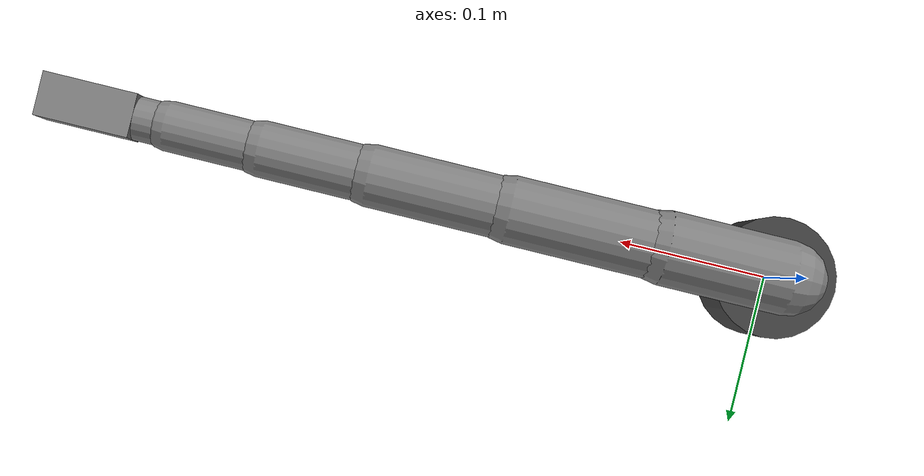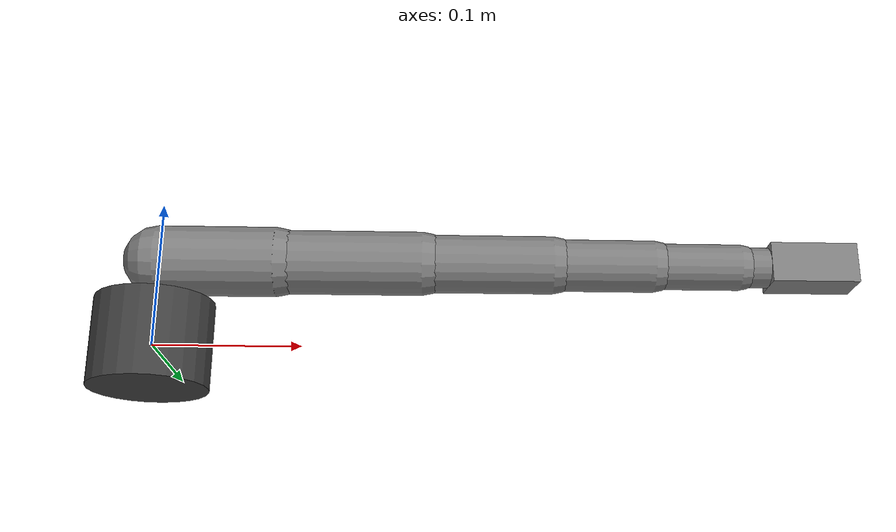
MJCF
<mujoco model="generic_7dof_arm">
  <compiler angle="degree" coordinate="local"/>
  <option timestep="0.002" gravity="0 0 -9.81"/>

  <worldbody>
    <body name="arm_base" pos="0 0 0">
      <geom type="cylinder" size="0.04 0.03" mass="0.2" rgba="0.25 0.25 0.25 1"/>
      <body name="link_1" pos="0 0 0.06">
        <joint name="joint_1" type="hinge" axis="0 0 1" range="-180 180"/>
        <geom type="capsule" fromto="0 0 0 0.08 0 0" size="0.024" mass="0.18"/>
        <body name="link_2" pos="0.08 0 0">
          <joint name="joint_2" type="hinge" axis="0 1 0" range="-120 120"/>
          <geom type="capsule" fromto="0 0 0 0.10 0 0" size="0.022" mass="0.18"/>
          <body name="link_3" pos="0.10 0 0">
            <joint name="joint_3" type="hinge" axis="0 1 0" range="-120 120"/>
            <geom type="capsule" fromto="0 0 0 0.09 0 0" size="0.020" mass="0.14"/>
            <body name="link_4" pos="0.09 0 0">
              <joint name="joint_4" type="hinge" axis="1 0 0" range="-180 180"/>
              <geom type="capsule" fromto="0 0 0 0.07 0 0" size="0.018" mass="0.12"/>
              <body name="link_5" pos="0.07 0 0">
                <joint name="joint_5" type="hinge" axis="0 1 0" range="-120 120"/>
                <geom type="capsule" fromto="0 0 0 0.06 0 0" size="0.016" mass="0.1"/>
                <body name="link_6" pos="0.06 0 0">
                  <joint name="joint_6" type="hinge" axis="1 0 0" range="-180 180"/>
                  <geom type="capsule" fromto="0 0 0 0.05 0 0" size="0.014" mass="0.08"/>
                  <body name="link_7" pos="0.05 0 0">
                    <joint name="joint_7" type="hinge" axis="0 1 0" range="-120 120"/>
                    <geom type="box" size="0.030 0.014 0.014" mass="0.06"/>
                  </body>
                </body>
              </body>
            </body>
          </body>
        </body>
      </body>
    </body>
  </worldbody>
</mujoco>
